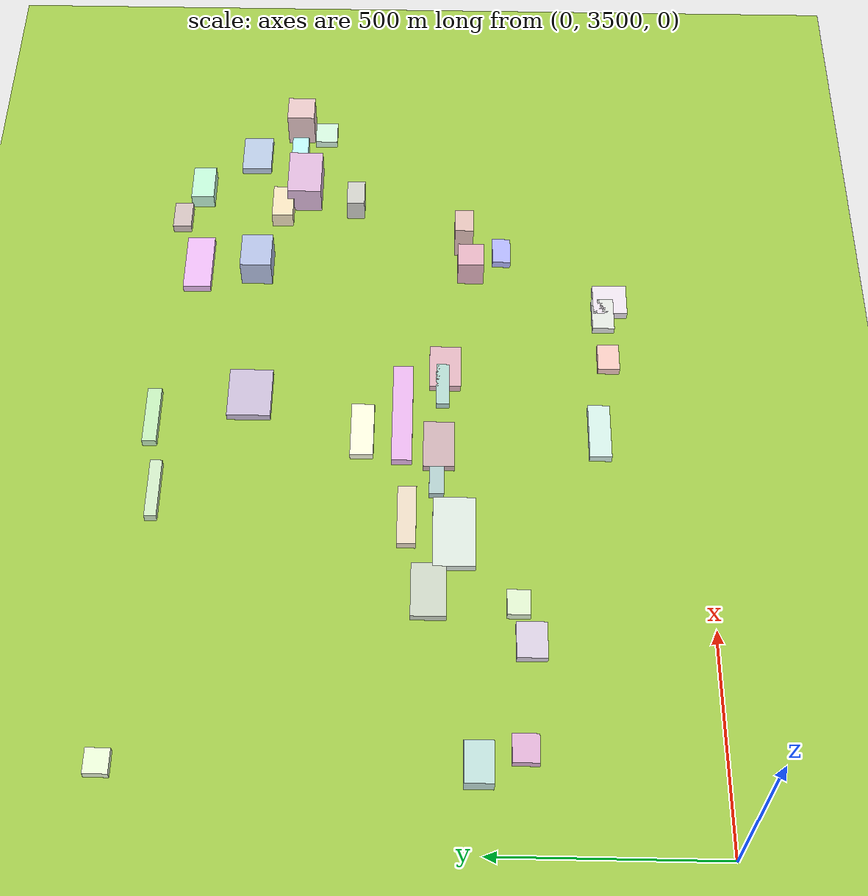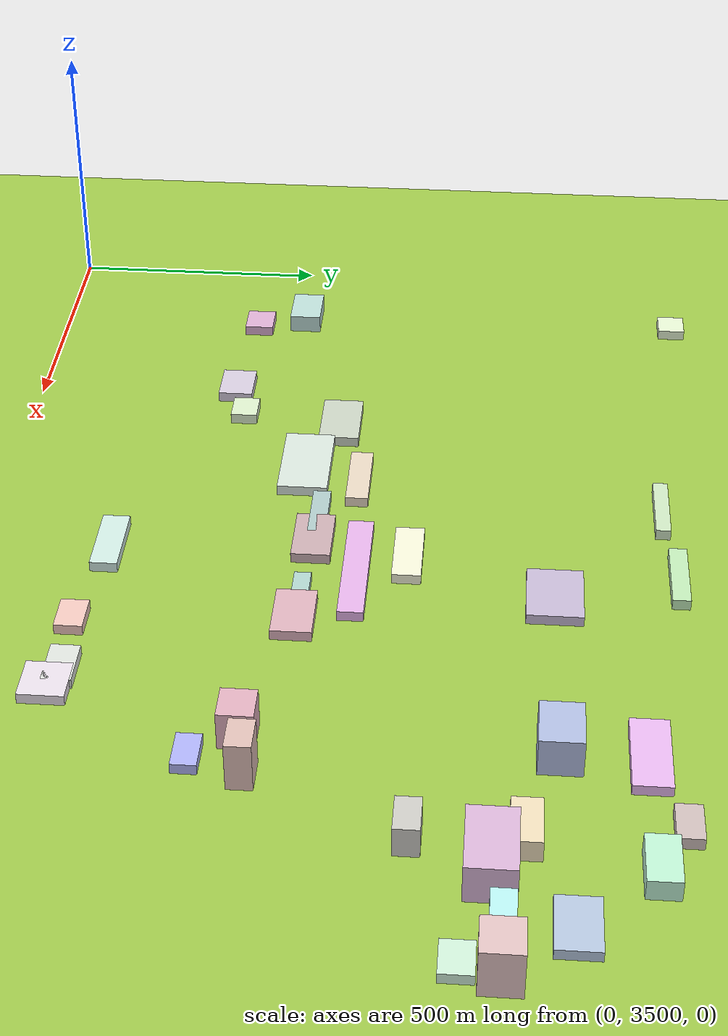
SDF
<sdf version="1.9">
 <world name="city_map">
  <model name="ground_plane">
   <static>1</static>
   <link name="link">
    <collision name="collision">
     <geometry><plane><normal>0 0 1</normal><size>11000 11000</size></plane></geometry>
    </collision>
    <visual name="visual">
     <geometry><plane><normal>0 0 1</normal><size>11000 11000</size></plane></geometry>
     <material>
      <ambient>0.551 0.712 0.210 1</ambient>
      <diffuse>0.651 0.812 0.310 1</diffuse>
      <specular>0.1 0.1 0.05 1</specular>
     </material>
    </visual>
   </link>
  </model>
  <model name="building_320055033">
   <static>1</static>
   <pose>722.7650583807107 4060.0905787830548 10.0 0 0 0</pose>
   <link name="link">
    <collision name="collision">
     <geometry><box><size>173.00551429493476 94.62749999927667 20</size></box></geometry>
    </collision>
    <visual name="visual">
     <cast_shadows>false</cast_shadows>
     <geometry><box><size>173.00551429493476 94.62749999927667 20</size></box></geometry>
     <material>
      <ambient>0.777 0.826 0.789 1</ambient>
      <diffuse>0.877 0.926 0.889 1</diffuse>
      <specular>0.263 0.278 0.267 1</specular>
      <emissive>0.01 0.01 0.01 1</emissive>
     </material>
    </visual>
   </link>
  </model>
  <model name="building_75668459">
   <static>1</static>
   <pose>1083.3814625973641 4534.161726377477 10.0 0 0 0</pose>
   <link name="link">
    <collision name="collision">
     <geometry><box><size>127.38054881714179 100.81019999975638 20</size></box></geometry>
    </collision>
    <visual name="visual">
     <cast_shadows>false</cast_shadows>
     <geometry><box><size>127.38054881714179 100.81019999975638 20</size></box></geometry>
     <material>
      <ambient>0.705 0.655 0.763 1</ambient>
      <diffuse>0.805 0.755 0.863 1</diffuse>
      <specular>0.242 0.227 0.259 1</specular>
      <emissive>0.01 0.01 0.01 1</emissive>
     </material>
    </visual>
   </link>
  </model>
  <model name="building_966225466">
   <static>1</static>
   <pose>1033.699743474463 4179.899975976225 10.0 0 0 0</pose>
   <link name="link">
    <collision name="collision">
     <geometry><box><size>257.5787889200583 46.631099999942194 20</size></box></geometry>
    </collision>
    <visual name="visual">
     <cast_shadows>false</cast_shadows>
     <geometry><box><size>257.5787889200583 46.631099999942194 20</size></box></geometry>
     <material>
      <ambient>0.828 0.632 0.841 1</ambient>
      <diffuse>0.928 0.732 0.941 1</diffuse>
      <specular>0.278 0.220 0.282 1</specular>
      <emissive>0.01 0.01 0.01 1</emissive>
     </material>
    </visual>
   </link>
  </model>
  <model name="building_553171154">
   <static>1</static>
   <pose>1714.8943419454727 4436.550554297808 36.34155790867682 0 0 0</pose>
   <link name="link">
    <collision name="collision">
     <geometry><box><size>126.08490000014427 82.71067181900767 72.68311581735364</size></box></geometry>
    </collision>
    <visual name="visual">
     <cast_shadows>false</cast_shadows>
     <geometry><box><size>126.08490000014427 82.71067181900767 72.68311581735364</size></box></geometry>
     <material>
      <ambient>0.786 0.641 0.776 1</ambient>
      <diffuse>0.886 0.741 0.876 1</diffuse>
      <specular>0.266 0.222 0.263 1</specular>
      <emissive>0.01 0.01 0.01 1</emissive>
     </material>
    </visual>
   </link>
  </model>
  <model name="building_916708169">
   <static>1</static>
   <pose>1466.0099293759647 4685.17328311066 10.0 0 0 0</pose>
   <link name="link">
    <collision name="collision">
     <geometry><box><size>151.98119999990922 66.28273521341676 20</size></box></geometry>
    </collision>
    <visual name="visual">
     <cast_shadows>false</cast_shadows>
     <geometry><box><size>151.98119999990922 66.28273521341676 20</size></box></geometry>
     <material>
      <ambient>0.842 0.651 0.869 1</ambient>
      <diffuse>0.942 0.751 0.969 1</diffuse>
      <specular>0.283 0.225 0.291 1</specular>
      <emissive>0.01 0.01 0.01 1</emissive>
     </material>
    </visual>
   </link>
  </model>
  <model name="building_777571421">
   <static>1</static>
   <pose>579.2930904361546 4114.865392520499 10.0 0 0 0</pose>
   <link name="link">
    <collision name="collision">
     <geometry><box><size>128.94870000048542 77.55399013383055 20</size></box></geometry>
    </collision>
    <visual name="visual">
     <cast_shadows>false</cast_shadows>
     <geometry><box><size>128.94870000048542 77.55399013383055 20</size></box></geometry>
     <material>
      <ambient>0.716 0.753 0.688 1</ambient>
      <diffuse>0.816 0.853 0.788 1</diffuse>
      <specular>0.245 0.256 0.236 1</specular>
      <emissive>0.01 0.01 0.01 1</emissive>
     </material>
    </visual>
   </link>
  </model>
  <model name="building_560268462">
   <static>1</static>
   <pose>949.628331608547 4095.58582460041 10.0 0 0 0</pose>
   <link name="link">
    <collision name="collision">
     <geometry><box><size>119.16959999977905 71.27784287182713 20</size></box></geometry>
    </collision>
    <visual name="visual">
     <cast_shadows>false</cast_shadows>
     <geometry><box><size>119.16959999977905 71.27784287182713 20</size></box></geometry>
     <material>
      <ambient>0.721 0.606 0.624 1</ambient>
      <diffuse>0.821 0.706 0.724 1</diffuse>
      <specular>0.246 0.212 0.217 1</specular>
      <emissive>0.01 0.01 0.01 1</emissive>
     </material>
    </visual>
   </link>
  </model>
  <model name="building_464524787">
   <static>1</static>
   <pose>1164.7567449688775 4082.6441596363293 10.0 0 0 0</pose>
   <link name="link">
    <collision name="collision">
     <geometry><box><size>112.35419999979257 72.73553941682053 20</size></box></geometry>
    </collision>
    <visual name="visual">
     <cast_shadows>false</cast_shadows>
     <geometry><box><size>112.35419999979257 72.73553941682053 20</size></box></geometry>
     <material>
      <ambient>0.797 0.624 0.666 1</ambient>
      <diffuse>0.897 0.724 0.766 1</diffuse>
      <specular>0.269 0.217 0.230 1</specular>
      <emissive>0.01 0.01 0.01 1</emissive>
     </material>
    </visual>
   </link>
  </model>
  <model name="building_939686810">
   <static>1</static>
   <pose>1822.4511607668887 4565.517826444746 10.0 0 0 0</pose>
   <link name="link">
    <collision name="collision">
     <geometry><box><size>103.06013343560343 72.56070000009629 20</size></box></geometry>
    </collision>
    <visual name="visual">
     <cast_shadows>false</cast_shadows>
     <geometry><box><size>103.06013343560343 72.56070000009629 20</size></box></geometry>
     <material>
      <ambient>0.640 0.708 0.807 1</ambient>
      <diffuse>0.740 0.808 0.907 1</diffuse>
      <specular>0.222 0.242 0.272 1</specular>
      <emissive>0.01 0.01 0.01 1</emissive>
     </material>
    </visual>
   </link>
  </model>
  <model name="building_319786948">
   <static>1</static>
   <pose>986.410841256762 4270.795393047774 10.0 0 0 0</pose>
   <link name="link">
    <collision name="collision">
     <geometry><box><size>136.67279814433098 52.7361000003026 20</size></box></geometry>
    </collision>
    <visual name="visual">
     <cast_shadows>false</cast_shadows>
     <geometry><box><size>136.67279814433098 52.7361000003026 20</size></box></geometry>
     <material>
      <ambient>0.892 0.894 0.787 1</ambient>
      <diffuse>0.992 0.994 0.887 1</diffuse>
      <specular>0.298 0.298 0.266 1</specular>
      <emissive>0.01 0.01 0.01 1</emissive>
     </material>
    </visual>
   </link>
  </model>
  <model name="building_11757893">
   <static>1</static>
   <pose>991.4461180079524 3729.0462643454925 10.0 0 0 0</pose>
   <link name="link">
    <collision name="collision">
     <geometry><box><size>139.04303766416905 50.1942000005684 20</size></box></geometry>
    </collision>
    <visual name="visual">
     <cast_shadows>false</cast_shadows>
     <geometry><box><size>139.04303766416905 50.1942000005684 20</size></box></geometry>
     <material>
      <ambient>0.747 0.851 0.820 1</ambient>
      <diffuse>0.847 0.951 0.920 1</diffuse>
      <specular>0.254 0.285 0.276 1</specular>
      <emissive>0.01 0.01 0.01 1</emissive>
     </material>
    </visual>
   </link>
  </model>
  <model name="building_136935771">
   <static>1</static>
   <pose>1463.2669609033242 4541.295387651442 36.45673338596995 0 0 0</pose>
   <link name="link">
    <collision name="collision">
     <geometry><box><size>92.54726307703646 74.21460000049507 72.9134667719399</size></box></geometry>
    </collision>
    <visual name="visual">
     <cast_shadows>false</cast_shadows>
     <geometry><box><size>92.54726307703646 74.21460000049507 72.9134667719399</size></box></geometry>
     <material>
      <ambient>0.620 0.669 0.812 1</ambient>
      <diffuse>0.720 0.769 0.912 1</diffuse>
      <specular>0.216 0.231 0.274 1</specular>
      <emissive>0.01 0.01 0.01 1</emissive>
     </material>
    </visual>
   </link>
  </model>
  <model name="building_296710054">
   <static>1</static>
   <pose>1368.0820469119822 3689.2500812313674 10.0 0 0 0</pose>
   <link name="link">
    <collision name="collision">
     <geometry><box><size>82.21715848827023 80.71920000000432 20</size></box></geometry>
    </collision>
    <visual name="visual">
     <cast_shadows>false</cast_shadows>
     <geometry><box><size>82.21715848827023 80.71920000000432 20</size></box></geometry>
     <material>
      <ambient>0.842 0.807 0.845 1</ambient>
      <diffuse>0.942 0.907 0.945 1</diffuse>
      <specular>0.283 0.272 0.284 1</specular>
      <emissive>0.01 0.01 0.01 1</emissive>
     </material>
    </visual>
   </link>
  </model>
  <model name="building_350237952">
   <static>1</static>
   <pose>762.8100478599006 4165.411220011218 10.0 0 0 0</pose>
   <link name="link">
    <collision name="collision">
     <geometry><box><size>146.21107748422284 42.24659999997016 20</size></box></geometry>
    </collision>
    <visual name="visual">
     <cast_shadows>false</cast_shadows>
     <geometry><box><size>146.21107748422284 42.24659999997016 20</size></box></geometry>
     <material>
      <ambient>0.837 0.775 0.688 1</ambient>
      <diffuse>0.937 0.875 0.788 1</diffuse>
      <specular>0.281 0.262 0.236 1</specular>
      <emissive>0.01 0.01 0.01 1</emissive>
     </material>
    </visual>
   </link>
  </model>
  <model name="building_750747264">
   <static>1</static>
   <pose>184.68682733309063 4008.0557723991806 17.73473866314987 0 0 0</pose>
   <link name="link">
    <collision name="collision">
     <geometry><box><size>92.27398157248442 62.52630000034998 35.46947732629974</size></box></geometry>
    </collision>
    <visual name="visual">
     <cast_shadows>false</cast_shadows>
     <geometry><box><size>92.27398157248442 62.52630000034998 35.46947732629974</size></box></geometry>
     <material>
      <ambient>0.663 0.790 0.768 1</ambient>
      <diffuse>0.763 0.890 0.868 1</diffuse>
      <specular>0.229 0.267 0.260 1</specular>
      <emissive>0.01 0.01 0.01 1</emissive>
     </material>
    </visual>
   </link>
  </model>
  <model name="building_110879723">
   <static>1</static>
   <pose>464.1129012079877 3894.3811513703617 10.0 0 0 0</pose>
   <link name="link">
    <collision name="collision">
     <geometry><box><size>84.18465233647059 66.65549999970466 20</size></box></geometry>
    </collision>
    <visual name="visual">
     <cast_shadows>false</cast_shadows>
     <geometry><box><size>84.18465233647059 66.65549999970466 20</size></box></geometry>
     <material>
      <ambient>0.764 0.725 0.796 1</ambient>
      <diffuse>0.864 0.825 0.896 1</diffuse>
      <specular>0.259 0.248 0.269 1</specular>
      <emissive>0.01 0.01 0.01 1</emissive>
     </material>
    </visual>
   </link>
  </model>
  <model name="building_251400632">
   <static>1</static>
   <pose>1705.8143704879055 4691.918855534136 19.778044029828283 0 0 0</pose>
   <link name="link">
    <collision name="collision">
     <geometry><box><size>95.32470530171754 55.500000000265004 39.55608805965657</size></box></geometry>
    </collision>
    <visual name="visual">
     <cast_shadows>false</cast_shadows>
     <geometry><box><size>95.32470530171754 55.500000000265004 39.55608805965657</size></box></geometry>
     <material>
      <ambient>0.677 0.882 0.759 1</ambient>
      <diffuse>0.777 0.982 0.859 1</diffuse>
      <specular>0.233 0.295 0.258 1</specular>
      <emissive>0.01 0.01 0.01 1</emissive>
     </material>
    </visual>
   </link>
  </model>
  <model name="building_749077585">
   <static>1</static>
   <pose>1645.881479096714 4489.085965943833 20.970855043774655 0 0 0</pose>
   <link name="link">
    <collision name="collision">
     <geometry><box><size>92.08560000033117 51.53427923949273 41.94171008754931</size></box></geometry>
    </collision>
    <visual name="visual">
     <cast_shadows>false</cast_shadows>
     <geometry><box><size>92.08560000033117 51.53427923949273 41.94171008754931</size></box></geometry>
     <material>
      <ambient>0.873 0.806 0.668 1</ambient>
      <diffuse>0.973 0.906 0.768 1</diffuse>
      <specular>0.292 0.272 0.230 1</specular>
      <emissive>0.01 0.01 0.01 1</emissive>
     </material>
    </visual>
   </link>
  </model>
  <model name="building_128519339">
   <static>1</static>
   <pose>1017.1621850022219 4754.653121373855 10.5 0 0 0</pose>
   <link name="link">
    <collision name="collision">
     <geometry><box><size>145.07341002334056 32.60070000003168 21.0</size></box></geometry>
    </collision>
    <visual name="visual">
     <cast_shadows>false</cast_shadows>
     <geometry><box><size>145.07341002334056 32.60070000003168 21.0</size></box></geometry>
     <material>
      <ambient>0.684 0.848 0.650 1</ambient>
      <diffuse>0.784 0.948 0.750 1</diffuse>
      <specular>0.235 0.284 0.225 1</specular>
      <emissive>0.01 0.01 0.01 1</emissive>
     </material>
    </visual>
   </link>
  </model>
  <model name="building_695195106">
   <static>1</static>
   <pose>1913.1374816092389 4455.533849927333 45.5447779298498 0 0 0</pose>
   <link name="link">
    <collision name="collision">
     <geometry><box><size>68.18864904861488 67.43250000010903 91.0895558596996</size></box></geometry>
    </collision>
    <visual name="visual">
     <cast_shadows>false</cast_shadows>
     <geometry><box><size>68.18864904861488 67.43250000010903 91.0895558596996</size></box></geometry>
     <material>
      <ambient>0.818 0.693 0.694 1</ambient>
      <diffuse>0.918 0.793 0.794 1</diffuse>
      <specular>0.275 0.238 0.238 1</specular>
      <emissive>0.01 0.01 0.01 1</emissive>
     </material>
    </visual>
   </link>
  </model>
  <model name="building_920460632">
   <static>1</static>
   <pose>1325.2556368908836 3707.280320769665 10.0 0 0 0</pose>
   <link name="link">
    <collision name="collision">
     <geometry><box><size>86.14490029887133 51.614999999820554 20</size></box></geometry>
    </collision>
    <visual name="visual">
     <cast_shadows>false</cast_shadows>
     <geometry><box><size>86.14490029887133 51.614999999820554 20</size></box></geometry>
     <material>
      <ambient>0.802 0.818 0.794 1</ambient>
      <diffuse>0.902 0.918 0.894 1</diffuse>
      <specular>0.270 0.276 0.268 1</specular>
      <emissive>0.01 0.01 0.01 1</emissive>
     </material>
    </visual>
   </link>
  </model>
  <model name="building_805315812">
   <static>1</static>
   <pose>878.9013899929072 4099.954316379063 10.0 0 0 0</pose>
   <link name="link">
    <collision name="collision">
     <geometry><box><size>120.5127000004893 33.09472603957618 20</size></box></geometry>
    </collision>
    <visual name="visual">
     <cast_shadows>false</cast_shadows>
     <geometry><box><size>120.5127000004893 33.09472603957618 20</size></box></geometry>
     <material>
      <ambient>0.610 0.718 0.714 1</ambient>
      <diffuse>0.710 0.818 0.814 1</diffuse>
      <specular>0.213 0.246 0.244 1</specular>
      <emissive>0.01 0.01 0.01 1</emissive>
     </material>
    </visual>
   </link>
  </model>
  <model name="building_990153528">
   <static>1</static>
   <pose>821.3490934296235 4732.141699608726 10.5 0 0 0</pose>
   <link name="link">
    <collision name="collision">
     <geometry><box><size>144.95274579915227 27.394799999925112 21.0</size></box></geometry>
    </collision>
    <visual name="visual">
     <cast_shadows>false</cast_shadows>
     <geometry><box><size>144.95274579915227 27.394799999925112 21.0</size></box></geometry>
     <material>
      <ambient>0.736 0.831 0.692 1</ambient>
      <diffuse>0.836 0.931 0.792 1</diffuse>
      <specular>0.251 0.279 0.238 1</specular>
      <emissive>0.01 0.01 0.01 1</emissive>
     </material>
    </visual>
   </link>
  </model>
  <model name="building_486128942">
   <static>1</static>
   <pose>1458.0368250022439 4023.5074071863296 36.75136917191267 0 0 0</pose>
   <link name="link">
    <collision name="collision">
     <geometry><box><size>63.62520000057259 61.94555749290815 73.50273834382534</size></box></geometry>
    </collision>
    <visual name="visual">
     <cast_shadows>false</cast_shadows>
     <geometry><box><size>63.62520000057259 61.94555749290815 73.50273834382534</size></box></geometry>
     <material>
      <ambient>0.811 0.615 0.674 1</ambient>
      <diffuse>0.911 0.715 0.774 1</diffuse>
      <specular>0.273 0.215 0.232 1</specular>
      <emissive>0.01 0.01 0.01 1</emissive>
     </material>
    </visual>
   </link>
  </model>
  <model name="building_522466882">
   <static>1</static>
   <pose>1817.1211145440857 4456.622236458855 17.563092317952602 0 0 0</pose>
   <link name="link">
    <collision name="collision">
     <geometry><box><size>95.46000000032961 40.6973547129108 35.126184635905204</size></box></geometry>
    </collision>
    <visual name="visual">
     <cast_shadows>false</cast_shadows>
     <geometry><box><size>95.46000000032961 40.6973547129108 35.126184635905204</size></box></geometry>
     <material>
      <ambient>0.656 0.886 0.885 1</ambient>
      <diffuse>0.756 0.986 0.985 1</diffuse>
      <specular>0.227 0.296 0.295 1</specular>
      <emissive>0.01 0.01 0.01 1</emissive>
     </material>
    </visual>
   </link>
  </model>
  <model name="building_16591042">
   <static>1</static>
   <pose>221.4765543646099 3911.9119344202654 10.0 0 0 0</pose>
   <link name="link">
    <collision name="collision">
     <geometry><box><size>63.397989278398306 57.26489999959483 20</size></box></geometry>
    </collision>
    <visual name="visual">
     <cast_shadows>false</cast_shadows>
     <geometry><box><size>63.397989278398306 57.26489999959483 20</size></box></geometry>
     <material>
      <ambient>0.793 0.611 0.750 1</ambient>
      <diffuse>0.893 0.711 0.850 1</diffuse>
      <specular>0.268 0.213 0.255 1</specular>
      <emissive>0.01 0.01 0.01 1</emissive>
     </material>
    </visual>
   </link>
  </model>
  <model name="building_63762630">
   <static>1</static>
   <pose>1198.9007904391794 3699.9850662190993 10.0 0 0 0</pose>
   <link name="link">
    <collision name="collision">
     <geometry><box><size>69.89319221355946 50.482799999997496 20</size></box></geometry>
    </collision>
    <visual name="visual">
     <cast_shadows>false</cast_shadows>
     <geometry><box><size>69.89319221355946 50.482799999997496 20</size></box></geometry>
     <material>
      <ambient>0.878 0.712 0.675 1</ambient>
      <diffuse>0.978 0.812 0.775 1</diffuse>
      <specular>0.293 0.244 0.233 1</specular>
      <emissive>0.01 0.01 0.01 1</emissive>
     </material>
    </visual>
   </link>
  </model>
  <model name="building_551667222">
   <static>1</static>
   <pose>1896.9588294577547 4392.466975714424 10.0 0 0 0</pose>
   <link name="link">
    <collision name="collision">
     <geometry><box><size>63.573773583653946 54.58979999988145 20</size></box></geometry>
    </collision>
    <visual name="visual">
     <cast_shadows>false</cast_shadows>
     <geometry><box><size>63.573773583653946 54.58979999988145 20</size></box></geometry>
     <material>
      <ambient>0.744 0.874 0.781 1</ambient>
      <diffuse>0.844 0.974 0.881 1</diffuse>
      <specular>0.253 0.292 0.264 1</specular>
      <emissive>0.01 0.01 0.01 1</emissive>
     </material>
    </visual>
   </link>
  </model>
  <model name="building_520137374">
   <static>1</static>
   <pose>1115.088246398248 4087.7590127980334 10.0 0 0 0</pose>
   <link name="link">
    <collision name="collision">
     <geometry><box><size>110.32289999971567 30.543807948893505 20</size></box></geometry>
    </collision>
    <visual name="visual">
     <cast_shadows>false</cast_shadows>
     <geometry><box><size>110.32289999971567 30.543807948893505 20</size></box></geometry>
     <material>
      <ambient>0.616 0.761 0.729 1</ambient>
      <diffuse>0.716 0.861 0.829 1</diffuse>
      <specular>0.215 0.258 0.249 1</specular>
      <emissive>0.01 0.01 0.01 1</emissive>
     </material>
    </visual>
   </link>
  </model>
  <model name="building_610516985">
   <static>1</static>
   <pose>1613.2522589689986 4737.253027127543 11.240638663916801 0 0 0</pose>
   <link name="link">
    <collision name="collision">
     <geometry><box><size>72.74622151081616 44.64420000038416 22.481277327833602</size></box></geometry>
    </collision>
    <visual name="visual">
     <cast_shadows>false</cast_shadows>
     <geometry><box><size>72.74622151081616 44.64420000038416 22.481277327833602</size></box></geometry>
     <material>
      <ambient>0.740 0.670 0.662 1</ambient>
      <diffuse>0.840 0.770 0.762 1</diffuse>
      <specular>0.252 0.231 0.229 1</specular>
      <emissive>0.01 0.01 0.01 1</emissive>
     </material>
    </visual>
   </link>
  </model>
  <model name="building_22413208">
   <static>1</static>
   <pose>1514.0350719345893 3947.6867637056266 10.0 0 0 0</pose>
   <link name="link">
    <collision name="collision">
     <geometry><box><size>71.79957366870869 43.55640000029126 20</size></box></geometry>
    </collision>
    <visual name="visual">
     <cast_shadows>false</cast_shadows>
     <geometry><box><size>71.79957366870869 43.55640000029126 20</size></box></geometry>
     <material>
      <ambient>0.612 0.626 0.897 1</ambient>
      <diffuse>0.712 0.726 0.997 1</diffuse>
      <specular>0.214 0.218 0.299 1</specular>
      <emissive>0.01 0.01 0.01 1</emissive>
     </material>
    </visual>
   </link>
  </model>
  <model name="building_838430045">
   <static>1</static>
   <pose>551.6591366118995 3921.0091548919772 10.5 0 0 0</pose>
   <link name="link">
    <collision name="collision">
     <geometry><box><size>59.88450000023704 50.892317151560846 21.0</size></box></geometry>
    </collision>
    <visual name="visual">
     <cast_shadows>false</cast_shadows>
     <geometry><box><size>59.88450000023704 50.892317151560846 21.0</size></box></geometry>
     <material>
      <ambient>0.792 0.863 0.725 1</ambient>
      <diffuse>0.892 0.963 0.825 1</diffuse>
      <specular>0.268 0.289 0.248 1</specular>
      <emissive>0.01 0.01 0.01 1</emissive>
     </material>
    </visual>
   </link>
  </model>
  <model name="building_689501615">
   <static>1</static>
   <pose>1662.2102978340513 4308.257162398391 29.02307415172335 0 0 0</pose>
   <link name="link">
    <collision name="collision">
     <geometry><box><size>68.720099999382 43.3100578073584 58.0461483034467</size></box></geometry>
    </collision>
    <visual name="visual">
     <cast_shadows>false</cast_shadows>
     <geometry><box><size>68.720099999382 43.3100578073584 58.0461483034467</size></box></geometry>
     <material>
      <ambient>0.729 0.728 0.704 1</ambient>
      <diffuse>0.829 0.828 0.804 1</diffuse>
      <specular>0.249 0.248 0.241 1</specular>
      <emissive>0.01 0.01 0.01 1</emissive>
     </material>
    </visual>
   </link>
  </model>
  <model name="building_110748891">
   <static>1</static>
   <pose>178.0701043334727 4781.42632368633 10.0 0 0 0</pose>
   <link name="link">
    <collision name="collision">
     <geometry><box><size>55.99141239010493 53.11349999998072 20</size></box></geometry>
    </collision>
    <visual name="visual">
     <cast_shadows>false</cast_shadows>
     <geometry><box><size>55.99141239010493 53.11349999998072 20</size></box></geometry>
     <material>
      <ambient>0.832 0.892 0.760 1</ambient>
      <diffuse>0.932 0.992 0.860 1</diffuse>
      <specular>0.280 0.297 0.258 1</specular>
      <emissive>0.01 0.01 0.01 1</emissive>
     </material>
    </visual>
   </link>
  </model>
  <model name="building_147204720">
   <static>1</static>
   <pose>1546.6133080262207 4040.181320040357 46.572674560558184 0 0 0</pose>
   <link name="link">
    <collision name="collision">
     <geometry><box><size>63.070200000396426 44.35841199595588 93.14534912111637</size></box></geometry>
    </collision>
    <visual name="visual">
     <cast_shadows>false</cast_shadows>
     <geometry><box><size>63.070200000396426 44.35841199595588 93.14534912111637</size></box></geometry>
     <material>
      <ambient>0.807 0.674 0.644 1</ambient>
      <diffuse>0.907 0.774 0.744 1</diffuse>
      <specular>0.272 0.232 0.223 1</specular>
      <emissive>0.01 0.01 0.01 1</emissive>
     </material>
    </visual>
   </link>
  </model>
 </world>
</sdf>
